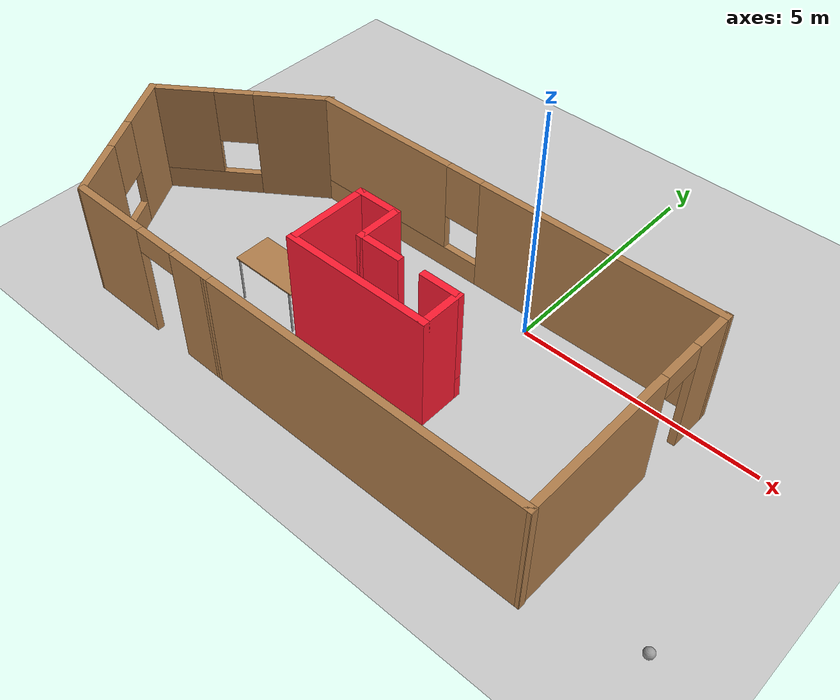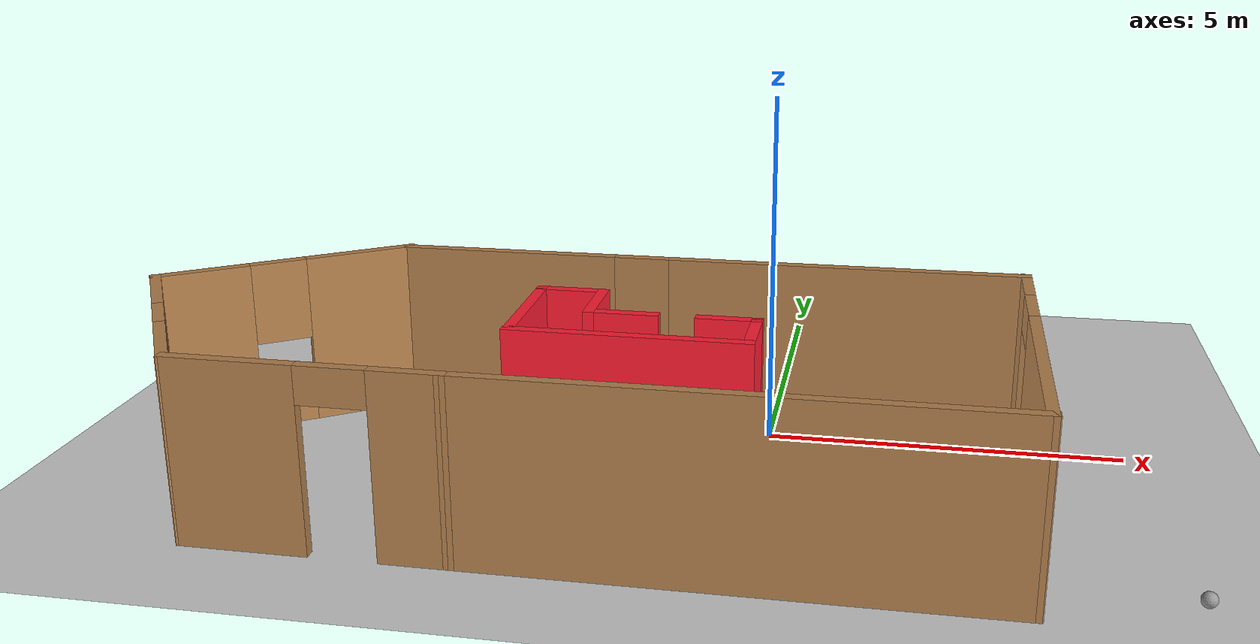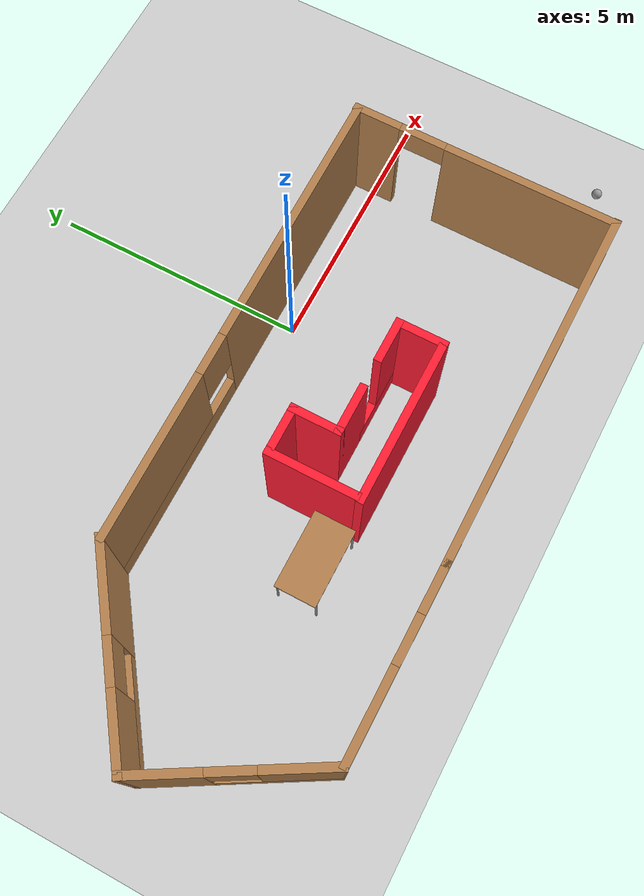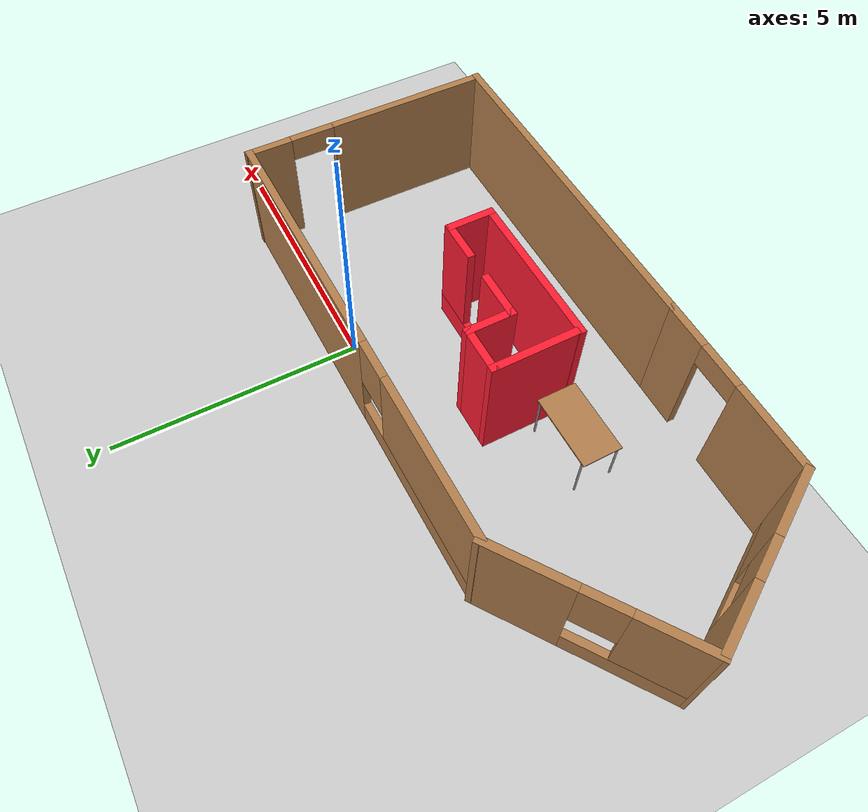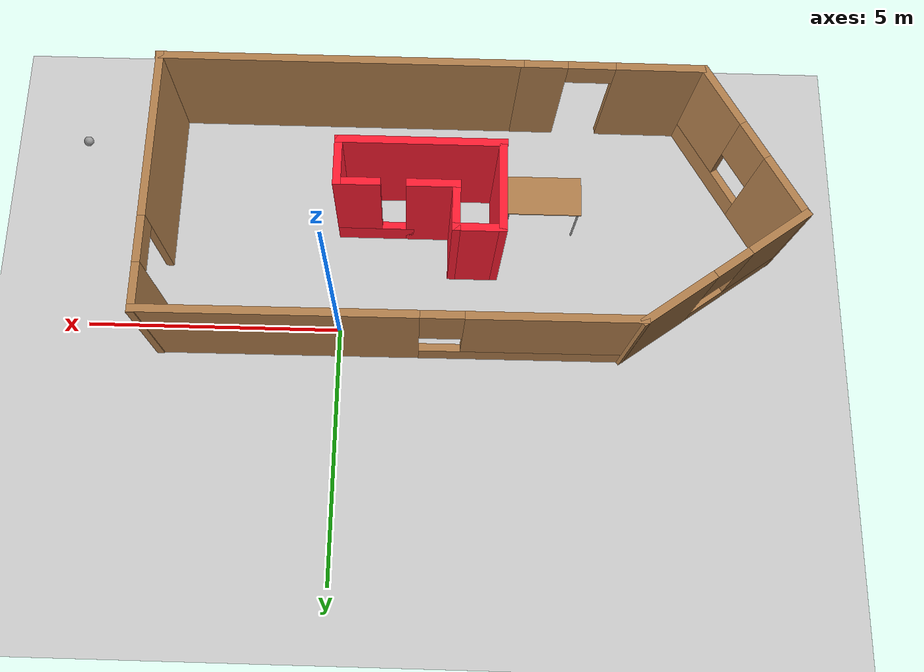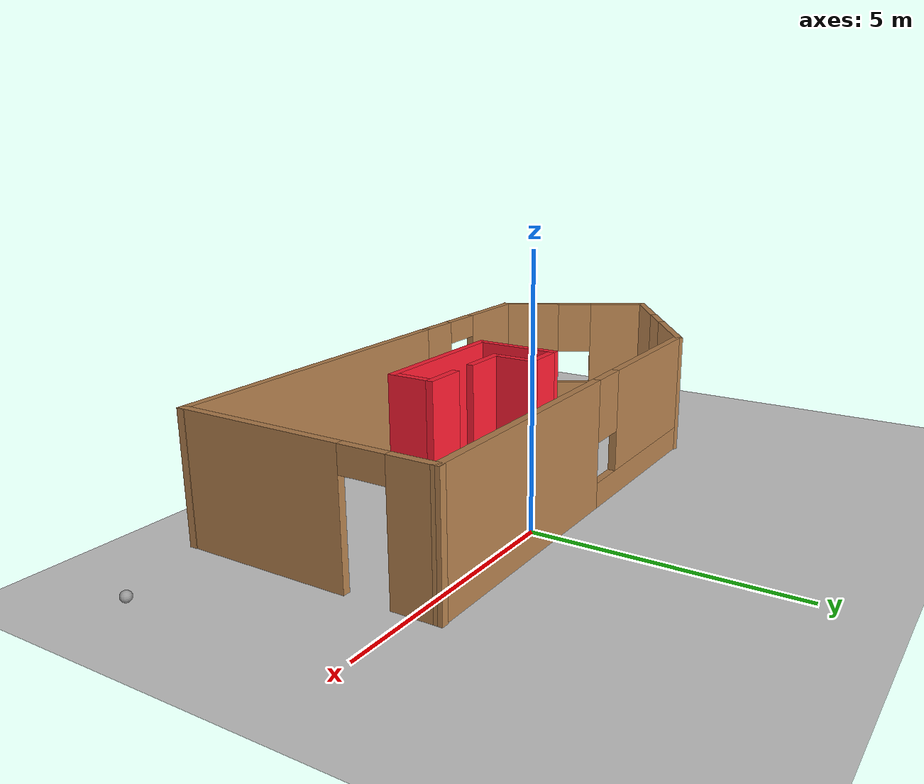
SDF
<sdf version="1.6">
 <world name="default">
  <plugin name="hello" filename="libhello.so"/>
  <light name="sun" type="directional">
   <pose>0 0 10 0 -0 0</pose>
   <diffuse>0.8 0.8 0.8 1</diffuse>
   <specular>0.2 0.2 0.2 1</specular>
   <attenuation>
    <range>1000</range>
    <constant>0.9</constant>
    <linear>0.01</linear>
    <quadratic>0.001</quadratic>
   </attenuation>
   <direction>-0.5 0.1 -0.9</direction>
  </light>
  <model name="ground_plane">
   <static>1</static>
   <link name="link">
    <collision name="collision">
     <geometry><plane><normal>0 0 1</normal><size>100 100</size></plane></geometry>
     <surface>
      <contact><collide_bitmask>65535</collide_bitmask></contact>
      <friction><ode><mu>100</mu><mu2>50</mu2></ode></friction>
     </surface>
    </collision>
    <visual name="visual">
     <cast_shadows>0</cast_shadows>
     <geometry><plane><normal>0 0 1</normal><size>100 100</size></plane></geometry>
     <material>
      <script><uri>file://media/materials/scripts/gazebo.material</uri><name>Gazebo/Grey</name></script>
     </material>
    </visual>
   </link>
  </model>
  <gravity>0 0 -9.8</gravity>
  <magnetic_field>6e-06 2.3e-05 -4.2e-05</magnetic_field>
  <atmosphere type="adiabatic"/>
  <physics name="default_physics" default="0" type="ode">
   <max_step_size>0.001</max_step_size>
   <real_time_factor>1</real_time_factor>
   <real_time_update_rate>1000</real_time_update_rate>
  </physics>
  <scene><ambient>0.4 0.4 0.4 1</ambient><background>0.7 0.7 0.7 1</background><shadows>1</shadows></scene>
  <spherical_coordinates>
   <surface_model>EARTH_WGS84</surface_model>
   <latitude_deg>0</latitude_deg>
   <longitude_deg>0</longitude_deg>
   <elevation>0</elevation>
   <heading_deg>0</heading_deg>
  </spherical_coordinates>
  <model name="Building">
   <pose>-2.52099 -2.06538 0 0 -0 0</pose>
   <link name="Wall_0">
    <collision name="Wall_0_Collision">
     <geometry><box><size>1.75 0.15 2.5</size></box></geometry>
     <pose>0 0 1.25 0 -0 0</pose>
    </collision>
    <visual name="Wall_0_Visual">
     <pose>0 0 1.25 0 -0 0</pose>
     <geometry><box><size>1.75 0.15 2.5</size></box></geometry>
     <material>
      <script><uri>file://media/materials/scripts/gazebo.material</uri><name>Gazebo/Grey</name></script>
      <ambient>1 0.109804 0.196078 1</ambient>
     </material>
     <meta><layer>0</layer></meta>
    </visual>
    <pose>-0.519012 0.025383 0 0 -0 1.5708</pose>
   </link>
   <link name="Wall_1">
    <collision name="Wall_1_Collision">
     <geometry><box><size>1 0.15 2.5</size></box></geometry>
     <pose>0 0 1.25 0 -0 0</pose>
    </collision>
    <visual name="Wall_1_Visual">
     <pose>0 0 1.25 0 -0 0</pose>
     <geometry><box><size>1 0.15 2.5</size></box></geometry>
     <material>
      <script><uri>file://media/materials/scripts/gazebo.material</uri><name>Gazebo/Grey</name></script>
      <ambient>1 0.109804 0.196078 1</ambient>
     </material>
     <meta><layer>0</layer></meta>
    </visual>
    <pose>-0.094012 0.825382 0 0 -0 0</pose>
   </link>
   <link name="Wall_10">
    <pose>1.50668 2.50655 0 0 0 -3.13655</pose>
    <visual name="Wall_10_Visual_0">
     <pose>-2.0198 0 1.25 0 -0 0</pose>
     <geometry><box><size>5.15902 0.15 2.5</size></box></geometry>
     <material>
      <script><uri>file://media/materials/scripts/gazebo.material</uri><name>Gazebo/Wood</name></script>
      <ambient>1 1 1 1</ambient>
     </material>
     <meta><layer>0</layer></meta>
    </visual>
    <collision name="Wall_10_Collision_0">
     <geometry><box><size>5.15902 0.15 2.5</size></box></geometry>
     <pose>-2.0198 0 1.25 0 -0 0</pose>
    </collision>
    <visual name="Wall_10_Visual_1">
     <pose>2.57951 0 0.25 0 -0 0</pose>
     <geometry><box><size>4.03959 0.15 0.5</size></box></geometry>
     <material>
      <script><uri>file://media/materials/scripts/gazebo.material</uri><name>Gazebo/Wood</name></script>
      <ambient>1 1 1 1</ambient>
     </material>
     <meta><layer>0</layer></meta>
    </visual>
    <collision name="Wall_10_Collision_1">
     <geometry><box><size>4.03959 0.15 0.5</size></box></geometry>
     <pose>2.57951 0 0.25 0 -0 0</pose>
    </collision>
    <visual name="Wall_10_Visual_2">
     <pose>2.97951 0 1.5 0 -0 0</pose>
     <geometry><box><size>3.23959 0.15 2</size></box></geometry>
     <material>
      <script><uri>file://media/materials/scripts/gazebo.material</uri><name>Gazebo/Wood</name></script>
      <ambient>1 1 1 1</ambient>
     </material>
     <meta><layer>0</layer></meta>
    </visual>
    <collision name="Wall_10_Collision_2">
     <geometry><box><size>3.23959 0.15 2</size></box></geometry>
     <pose>2.97951 0 1.5 0 -0 0</pose>
    </collision>
    <visual name="Wall_10_Visual_3">
     <pose>0.959713 0 1.9 0 -0 0</pose>
     <geometry><box><size>0.8 0.15 1.2</size></box></geometry>
     <material>
      <script><uri>file://media/materials/scripts/gazebo.material</uri><name>Gazebo/Wood</name></script>
      <ambient>1 1 1 1</ambient>
     </material>
     <meta><layer>0</layer></meta>
    </visual>
    <collision name="Wall_10_Collision_3">
     <geometry><box><size>0.8 0.15 1.2</size></box></geometry>
     <pose>0.959713 0 1.9 0 -0 0</pose>
    </collision>
   </link>
   <link name="Wall_12">
    <pose>-4.50969 1.44993 0 0 0 -2.52203</pose>
    <visual name="Wall_12_Visual_0">
     <pose>-1.08473 0 1.25 0 -0 0</pose>
     <geometry><box><size>1.64596 0.15 2.5</size></box></geometry>
     <material>
      <script><uri>file://media/materials/scripts/gazebo.material</uri><name>Gazebo/Wood</name></script>
      <ambient>1 1 1 1</ambient>
     </material>
     <meta><layer>0</layer></meta>
    </visual>
    <collision name="Wall_12_Collision_0">
     <geometry><box><size>1.64596 0.15 2.5</size></box></geometry>
     <pose>-1.08473 0 1.25 0 -0 0</pose>
    </collision>
    <visual name="Wall_12_Visual_1">
     <pose>0.822982 0 0.25 0 -0 0</pose>
     <geometry><box><size>2.16946 0.15 0.5</size></box></geometry>
     <material>
      <script><uri>file://media/materials/scripts/gazebo.material</uri><name>Gazebo/Wood</name></script>
      <ambient>1 1 1 1</ambient>
     </material>
     <meta><layer>0</layer></meta>
    </visual>
    <collision name="Wall_12_Collision_1">
     <geometry><box><size>2.16946 0.15 0.5</size></box></geometry>
     <pose>0.822982 0 0.25 0 -0 0</pose>
    </collision>
    <visual name="Wall_12_Visual_2">
     <pose>1.22298 0 1.5 0 -0 0</pose>
     <geometry><box><size>1.36946 0.15 2</size></box></geometry>
     <material>
      <script><uri>file://media/materials/scripts/gazebo.material</uri><name>Gazebo/Wood</name></script>
      <ambient>1 1 1 1</ambient>
     </material>
     <meta><layer>0</layer></meta>
    </visual>
    <collision name="Wall_12_Collision_2">
     <geometry><box><size>1.36946 0.15 2</size></box></geometry>
     <pose>1.22298 0 1.5 0 -0 0</pose>
    </collision>
    <visual name="Wall_12_Visual_3">
     <pose>0.13825 0 1.9 0 -0 0</pose>
     <geometry><box><size>0.8 0.15 1.2</size></box></geometry>
     <material>
      <script><uri>file://media/materials/scripts/gazebo.material</uri><name>Gazebo/Wood</name></script>
      <ambient>1 1 1 1</ambient>
     </material>
     <meta><layer>0</layer></meta>
    </visual>
    <collision name="Wall_12_Collision_3">
     <geometry><box><size>0.8 0.15 1.2</size></box></geometry>
     <pose>0.13825 0 1.9 0 -0 0</pose>
    </collision>
   </link>
   <link name="Wall_13">
    <pose>-5.16427 -1.06488 0 0 0 -1.0472</pose>
    <visual name="Wall_13_Visual_0">
     <pose>-1.075 0 1.25 0 -0 0</pose>
     <geometry><box><size>1.35 0.15 2.5</size></box></geometry>
     <material>
      <script><uri>file://media/materials/scripts/gazebo.material</uri><name>Gazebo/Wood</name></script>
      <ambient>1 1 1 1</ambient>
     </material>
     <meta><layer>0</layer></meta>
    </visual>
    <collision name="Wall_13_Collision_0">
     <geometry><box><size>1.35 0.15 2.5</size></box></geometry>
     <pose>-1.075 0 1.25 0 -0 0</pose>
    </collision>
    <visual name="Wall_13_Visual_1">
     <pose>0.675 0 0.25 0 -0 0</pose>
     <geometry><box><size>2.15 0.15 0.5</size></box></geometry>
     <material>
      <script><uri>file://media/materials/scripts/gazebo.material</uri><name>Gazebo/Wood</name></script>
      <ambient>1 1 1 1</ambient>
     </material>
     <meta><layer>0</layer></meta>
    </visual>
    <collision name="Wall_13_Collision_1">
     <geometry><box><size>2.15 0.15 0.5</size></box></geometry>
     <pose>0.675 0 0.25 0 -0 0</pose>
    </collision>
    <visual name="Wall_13_Visual_2">
     <pose>1.075 0 1.5 0 -0 0</pose>
     <geometry><box><size>1.35 0.15 2</size></box></geometry>
     <material>
      <script><uri>file://media/materials/scripts/gazebo.material</uri><name>Gazebo/Wood</name></script>
      <ambient>1 1 1 1</ambient>
     </material>
     <meta><layer>0</layer></meta>
    </visual>
    <collision name="Wall_13_Collision_2">
     <geometry><box><size>1.35 0.15 2</size></box></geometry>
     <pose>1.075 0 1.5 0 -0 0</pose>
    </collision>
    <visual name="Wall_13_Visual_3">
     <pose>-0 0 1.9 0 -0 0</pose>
     <geometry><box><size>0.8 0.15 1.2</size></box></geometry>
     <material>
      <script><uri>file://media/materials/scripts/gazebo.material</uri><name>Gazebo/Wood</name></script>
      <ambient>1 1 1 1</ambient>
     </material>
     <meta><layer>0</layer></meta>
    </visual>
    <collision name="Wall_13_Collision_3">
     <geometry><box><size>0.8 0.15 1.2</size></box></geometry>
     <pose>-0 0 1.9 0 -0 0</pose>
    </collision>
   </link>
   <link name="Wall_14">
    <pose>-2.57091 -2.53762 0 0 0 -0.004024</pose>
    <visual name="Wall_14_Visual_0">
     <pose>-0.934029 0 1.25 0 -0 0</pose>
     <geometry><box><size>1.73286 0.15 2.5</size></box></geometry>
     <material>
      <script><uri>file://media/materials/scripts/gazebo.material</uri><name>Gazebo/Wood</name></script>
      <ambient>1 1 1 1</ambient>
     </material>
     <meta><layer>0</layer></meta>
    </visual>
    <collision name="Wall_14_Collision_0">
     <geometry><box><size>1.73286 0.15 2.5</size></box></geometry>
     <pose>-0.934029 0 1.25 0 -0 0</pose>
    </collision>
    <visual name="Wall_14_Visual_1">
     <pose>1.31643 0 1.25 0 -0 0</pose>
     <geometry><box><size>0.968058 0.15 2.5</size></box></geometry>
     <material>
      <script><uri>file://media/materials/scripts/gazebo.material</uri><name>Gazebo/Wood</name></script>
      <ambient>1 1 1 1</ambient>
     </material>
     <meta><layer>0</layer></meta>
    </visual>
    <collision name="Wall_14_Collision_1">
     <geometry><box><size>0.968058 0.15 2.5</size></box></geometry>
     <pose>1.31643 0 1.25 0 -0 0</pose>
    </collision>
    <visual name="Wall_14_Visual_2">
     <pose>0.382399 0 2.25 0 -0 0</pose>
     <geometry><box><size>0.9 0.15 0.5</size></box></geometry>
     <material>
      <script><uri>file://media/materials/scripts/gazebo.material</uri><name>Gazebo/Wood</name></script>
      <ambient>1 1 1 1</ambient>
     </material>
     <meta><layer>0</layer></meta>
    </visual>
    <collision name="Wall_14_Collision_2">
     <geometry><box><size>0.9 0.15 0.5</size></box></geometry>
     <pose>0.382399 0 2.25 0 -0 0</pose>
    </collision>
   </link>
   <link name="Wall_16">
    <collision name="Wall_16_Collision">
     <geometry><box><size>1 0.15 2.5</size></box></geometry>
     <pose>0 0 1.25 0 -0 0</pose>
    </collision>
    <visual name="Wall_16_Visual">
     <pose>0 0 1.25 0 -0 0</pose>
     <geometry><box><size>1 0.15 2.5</size></box></geometry>
     <material>
      <script><uri>file://media/materials/scripts/gazebo.material</uri><name>Gazebo/Grey</name></script>
      <ambient>1 0.109804 0.196078 1</ambient>
     </material>
     <meta><layer>0</layer></meta>
    </visual>
    <pose>2.53099 -0.449618 0 0 -0 1.5708</pose>
   </link>
   <link name="Wall_2">
    <collision name="Wall_2_Collision">
     <geometry><box><size>1 0.15 2.5</size></box></geometry>
     <pose>0 0 1.25 0 -0 0</pose>
    </collision>
    <visual name="Wall_2_Visual">
     <pose>0 0 1.25 0 -0 0</pose>
     <geometry><box><size>1 0.15 2.5</size></box></geometry>
     <material>
      <script><uri>file://media/materials/scripts/gazebo.material</uri><name>Gazebo/Grey</name></script>
      <ambient>1 0.109804 0.196078 1</ambient>
     </material>
     <meta><layer>0</layer></meta>
    </visual>
    <pose>0.330988 0.400383 0 0 0 -1.5708</pose>
   </link>
   <link name="Wall_3">
    <collision name="Wall_3_Collision">
     <geometry><box><size>1 0.15 2.5</size></box></geometry>
     <pose>0 0 1.25 0 -0 0</pose>
    </collision>
    <visual name="Wall_3_Visual">
     <pose>0 0 1.25 0 -0 0</pose>
     <geometry><box><size>1 0.15 2.5</size></box></geometry>
     <material>
      <script><uri>file://media/materials/scripts/gazebo.material</uri><name>Gazebo/Grey</name></script>
      <ambient>1 0.109804 0.196078 1</ambient>
     </material>
     <meta><layer>0</layer></meta>
    </visual>
    <pose>0.755988 -0.024617 0 0 -0 0</pose>
   </link>
   <link name="Wall_4">
    <pose>1.85599 -0.024617 0 0 -0 0</pose>
    <visual name="Wall_4_Visual_0">
     <pose>0 0 0.25 0 -0 0</pose>
     <geometry><box><size>1.5 0.15 0.5</size></box></geometry>
     <material>
      <script><uri>file://media/materials/scripts/gazebo.material</uri><name>Gazebo/Grey</name></script>
      <ambient>1 0.109804 0.196078 1</ambient>
     </material>
     <meta><layer>0</layer></meta>
    </visual>
    <collision name="Wall_4_Collision_0">
     <geometry><box><size>1.5 0.15 0.5</size></box></geometry>
     <pose>0 0 0.25 0 -0 0</pose>
    </collision>
    <visual name="Wall_4_Visual_1">
     <pose>0.311136 0 1.5 0 -0 0</pose>
     <geometry><box><size>0.877727 0.15 2</size></box></geometry>
     <material>
      <script><uri>file://media/materials/scripts/gazebo.material</uri><name>Gazebo/Grey</name></script>
      <ambient>1 0.109804 0.196078 1</ambient>
     </material>
     <meta><layer>0</layer></meta>
    </visual>
    <collision name="Wall_4_Collision_1">
     <geometry><box><size>0.877727 0.15 2</size></box></geometry>
     <pose>0.311136 0 1.5 0 -0 0</pose>
    </collision>
   </link>
   <link name="Wall_6">
    <collision name="Wall_6_Collision">
     <geometry><box><size>3.21 0.15 2.5</size></box></geometry>
     <pose>0 0 1.25 0 -0 0</pose>
    </collision>
    <visual name="Wall_6_Visual">
     <pose>0 0 1.25 0 -0 0</pose>
     <geometry><box><size>3.21 0.15 2.5</size></box></geometry>
     <material>
      <script><uri>file://media/materials/scripts/gazebo.material</uri><name>Gazebo/Grey</name></script>
      <ambient>1 0.109804 0.196078 1</ambient>
     </material>
     <meta><layer>0</layer></meta>
    </visual>
    <pose>1.00099 -0.874618 0 0 -0 3.14159</pose>
   </link>
   <link name="Wall_8">
    <collision name="Wall_8_Collision">
     <geometry><box><size>7 0.15 2.5</size></box></geometry>
     <pose>0 0 1.25 0 -0 0</pose>
    </collision>
    <visual name="Wall_8_Visual">
     <pose>0 0 1.25 0 -0 0</pose>
     <geometry><box><size>7 0.15 2.5</size></box></geometry>
     <material>
      <script><uri>file://media/materials/scripts/gazebo.material</uri><name>Gazebo/Wood</name></script>
      <ambient>1 1 1 1</ambient>
     </material>
     <meta><layer>0</layer></meta>
    </visual>
    <pose>2.59276 -2.54457 0 0 -0 0</pose>
   </link>
   <link name="Wall_9">
    <pose>6.01776 0 0 0 -0 1.5656</pose>
    <visual name="Wall_9_Visual_0">
     <pose>-0.926924 0 1.25 0 -0 0</pose>
     <geometry><box><size>3.38536 0.15 2.5</size></box></geometry>
     <material>
      <script><uri>file://media/materials/scripts/gazebo.material</uri><name>Gazebo/Wood</name></script>
      <ambient>1 1 1 1</ambient>
     </material>
     <meta><layer>0</layer></meta>
    </visual>
    <collision name="Wall_9_Collision_0">
     <geometry><box><size>3.38536 0.15 2.5</size></box></geometry>
     <pose>-0.926924 0 1.25 0 -0 0</pose>
    </collision>
    <visual name="Wall_9_Visual_1">
     <pose>2.14268 0 1.25 0 -0 0</pose>
     <geometry><box><size>0.953848 0.15 2.5</size></box></geometry>
     <material>
      <script><uri>file://media/materials/scripts/gazebo.material</uri><name>Gazebo/Wood</name></script>
      <ambient>1 1 1 1</ambient>
     </material>
     <meta><layer>0</layer></meta>
    </visual>
    <collision name="Wall_9_Collision_1">
     <geometry><box><size>0.953848 0.15 2.5</size></box></geometry>
     <pose>2.14268 0 1.25 0 -0 0</pose>
    </collision>
    <visual name="Wall_9_Visual_2">
     <pose>1.21575 0 2.25 0 -0 0</pose>
     <geometry><box><size>0.9 0.15 0.5</size></box></geometry>
     <material>
      <script><uri>file://media/materials/scripts/gazebo.material</uri><name>Gazebo/Wood</name></script>
      <ambient>1 1 1 1</ambient>
     </material>
     <meta><layer>0</layer></meta>
    </visual>
    <collision name="Wall_9_Collision_2">
     <geometry><box><size>0.9 0.15 0.5</size></box></geometry>
     <pose>1.21575 0 2.25 0 -0 0</pose>
    </collision>
   </link>
   <static>1</static>
  </model>
  <model name="table">
   <static>1</static>
   <link name="link">
    <collision name="surface">
     <pose>0 0 1 0 -0 0</pose>
     <geometry><box><size>1.5 0.8 0.03</size></box></geometry>
     <surface><friction><ode><mu>0.6</mu><mu2>0.6</mu2></ode></friction></surface>
    </collision>
    <visual name="visual1">
     <pose>0 0 1 0 -0 0</pose>
     <geometry><box><size>1.5 0.8 0.03</size></box></geometry>
     <material>
      <script><uri>file://media/materials/scripts/gazebo.material</uri><name>Gazebo/Wood</name></script>
     </material>
    </visual>
    <collision name="front_left_leg">
     <pose>0.68 0.38 0.5 0 -0 0</pose>
     <geometry><cylinder><radius>0.02</radius><length>1</length></cylinder></geometry>
    </collision>
    <visual name="front_left_leg">
     <pose>0.68 0.38 0.5 0 -0 0</pose>
     <geometry><cylinder><radius>0.02</radius><length>1</length></cylinder></geometry>
     <material>
      <script><uri>file://media/materials/scripts/gazebo.material</uri><name>Gazebo/Grey</name></script>
     </material>
    </visual>
    <collision name="front_right_leg">
     <pose>0.68 -0.38 0.5 0 -0 0</pose>
     <geometry><cylinder><radius>0.02</radius><length>1</length></cylinder></geometry>
    </collision>
    <visual name="front_right_leg">
     <pose>0.68 -0.38 0.5 0 -0 0</pose>
     <geometry><cylinder><radius>0.02</radius><length>1</length></cylinder></geometry>
     <material>
      <script><uri>file://media/materials/scripts/gazebo.material</uri><name>Gazebo/Grey</name></script>
     </material>
    </visual>
    <collision name="back_right_leg">
     <pose>-0.68 -0.38 0.5 0 -0 0</pose>
     <geometry><cylinder><radius>0.02</radius><length>1</length></cylinder></geometry>
    </collision>
    <visual name="back_right_leg">
     <pose>-0.68 -0.38 0.5 0 -0 0</pose>
     <geometry><cylinder><radius>0.02</radius><length>1</length></cylinder></geometry>
     <material>
      <script><uri>file://media/materials/scripts/gazebo.material</uri><name>Gazebo/Grey</name></script>
     </material>
    </visual>
    <collision name="back_left_leg">
     <pose>-0.68 0.38 0.5 0 -0 0</pose>
     <geometry><cylinder><radius>0.02</radius><length>1</length></cylinder></geometry>
    </collision>
    <visual name="back_left_leg">
     <pose>-0.68 0.38 0.5 0 -0 0</pose>
     <geometry><cylinder><radius>0.02</radius><length>1</length></cylinder></geometry>
     <material>
      <script><uri>file://media/materials/scripts/gazebo.material</uri><name>Gazebo/Grey</name></script>
     </material>
    </visual>
   </link>
   <pose>-3.9493 -2.58075 0 0 -0 0</pose>
  </model>
  <model name="my_ball">
   <link name="link">
    <inertial>
     <mass>1</mass>
     <inertia><ixx>0.1</ixx><ixy>0</ixy><ixz>0</ixz><iyy>0.1</iyy><iyz>0</iyz><izz>0.1</izz></inertia>
    </inertial>
    <visual name="visual">
     <geometry><sphere><radius>0.1</radius></sphere></geometry>
     <material>
      <script><name>Gazebo/Grey</name><uri>file://media/materials/scripts/gazebo.material</uri></script>
      <shader type="pixel"><normal_map>__default__</normal_map></shader>
      <ambient>1 1 1 1</ambient>
      <diffuse>1 1 1 1</diffuse>
      <specular>1 1 1 1</specular>
      <emissive>1 1 1 1</emissive>
     </material>
    </visual>
    <collision name="collision">
     <geometry><sphere><radius>0.1</radius></sphere></geometry>
     <surface>
      <friction>
       <ode><mu>1</mu><mu2>1</mu2><fdir1>0 0 0</fdir1><slip1>0</slip1><slip2>0</slip2></ode>
       <torsional>
        <coefficient>1</coefficient>
        <patch_radius>0</patch_radius>
        <surface_radius>0</surface_radius>
        <use_patch_radius>1</use_patch_radius>
        <ode><slip>0</slip></ode>
       </torsional>
      </friction>
      <bounce><restitution_coefficient>0</restitution_coefficient><threshold>1e+06</threshold></bounce>
      <contact>
       <collide_without_contact>0</collide_without_contact>
       <collide_without_contact_bitmask>1</collide_without_contact_bitmask>
       <collide_bitmask>1</collide_bitmask>
       <ode>
        <soft_cfm>0</soft_cfm>
        <soft_erp>0.2</soft_erp>
        <kp>1e+13</kp>
        <kd>1</kd>
        <max_vel>0.01</max_vel>
        <min_depth>0</min_depth>
       </ode>
       <bullet>
        <split_impulse>1</split_impulse>
        <split_impulse_penetration_threshold>-0.01</split_impulse_penetration_threshold>
        <soft_cfm>0</soft_cfm>
        <soft_erp>0.2</soft_erp>
        <kp>1e+13</kp>
        <kd>1</kd>
       </bullet>
      </contact>
     </surface>
    </collision>
   </link>
   <static>0</static>
   <pose>5.45479 -3.99167 0.1 0 -0 0</pose>
  </model>
  <plugin filename="libcollision_map_creator.so" name="collision_map_creator"/>
 </world>
</sdf>
